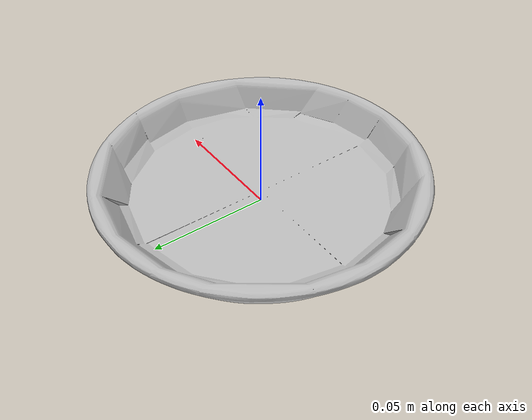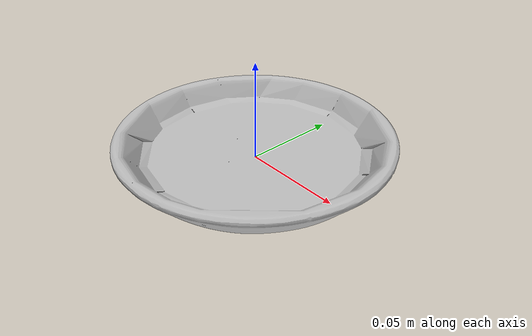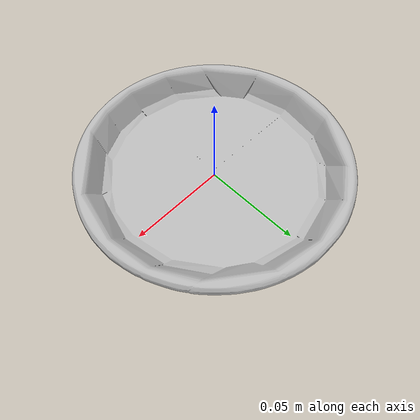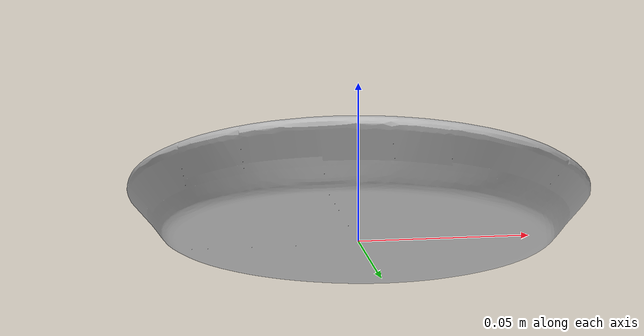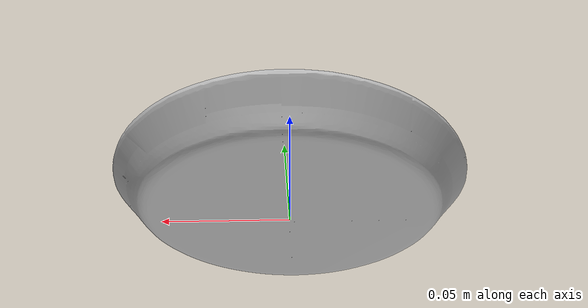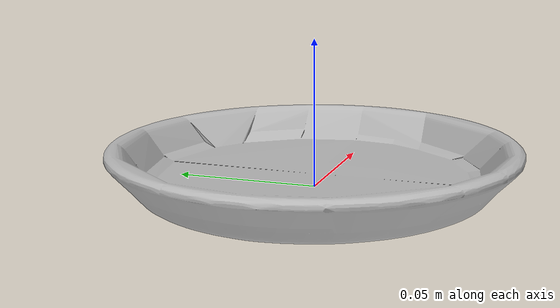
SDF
<?xml version='1.0' encoding='utf-8'?>
<sdf version="1.7">
  <model name="bread_plate_2">
    <link name="base_link">
      <inertial>
        <mass>0.400000</mass>
        <pose>0.000280 -0.000131 0.005774 0 0 0</pose>
        <inertia>
          <ixx>7.645096e-04</ixx>
          <iyy>7.726847e-04</iyy>
          <izz>1.515521e-03</izz>
          <ixy>-1.144389e-06</ixy>
          <ixz>-1.388562e-06</ixz>
          <iyz>6.249604e-07</iyz>
        </inertia>
      </inertial>
      <visual name="visual">
        <geometry>
          <mesh>
            <uri>bread_plate_2_visual.obj</uri>
            <scale>0.8 0.8 0.8</scale>
          </mesh>
        </geometry>
      </visual>
      <collision name="collision_0">
        <surface>
          <friction>
            <ode>
              <mu>0.500</mu>
              <mu2>0.500</mu2>
            </ode>
          </friction>
        </surface>
        <geometry>
          <mesh>
            <uri>bread_plate_2_collision_0.obj</uri>
            <scale>0.8 0.8 0.8</scale>
          </mesh>
        </geometry>
      </collision>
      <collision name="collision_1">
        <surface>
          <friction>
            <ode>
              <mu>0.500</mu>
              <mu2>0.500</mu2>
            </ode>
          </friction>
        </surface>
        <geometry>
          <mesh>
            <uri>bread_plate_2_collision_1.obj</uri>
            <scale>0.8 0.8 0.8</scale>
          </mesh>
        </geometry>
      </collision>
      <collision name="collision_2">
        <surface>
          <friction>
            <ode>
              <mu>0.500</mu>
              <mu2>0.500</mu2>
            </ode>
          </friction>
        </surface>
        <geometry>
          <mesh>
            <uri>bread_plate_2_collision_10.obj</uri>
            <scale>0.8 0.8 0.8</scale>
          </mesh>
        </geometry>
      </collision>
      <collision name="collision_3">
        <surface>
          <friction>
            <ode>
              <mu>0.500</mu>
              <mu2>0.500</mu2>
            </ode>
          </friction>
        </surface>
        <geometry>
          <mesh>
            <uri>bread_plate_2_collision_11.obj</uri>
            <scale>0.8 0.8 0.8</scale>
          </mesh>
        </geometry>
      </collision>
      <collision name="collision_4">
        <surface>
          <friction>
            <ode>
              <mu>0.500</mu>
              <mu2>0.500</mu2>
            </ode>
          </friction>
        </surface>
        <geometry>
          <mesh>
            <uri>bread_plate_2_collision_12.obj</uri>
            <scale>0.8 0.8 0.8</scale>
          </mesh>
        </geometry>
      </collision>
      <collision name="collision_5">
        <surface>
          <friction>
            <ode>
              <mu>0.500</mu>
              <mu2>0.500</mu2>
            </ode>
          </friction>
        </surface>
        <geometry>
          <mesh>
            <uri>bread_plate_2_collision_13.obj</uri>
            <scale>0.8 0.8 0.8</scale>
          </mesh>
        </geometry>
      </collision>
      <collision name="collision_6">
        <surface>
          <friction>
            <ode>
              <mu>0.500</mu>
              <mu2>0.500</mu2>
            </ode>
          </friction>
        </surface>
        <geometry>
          <mesh>
            <uri>bread_plate_2_collision_14.obj</uri>
            <scale>0.8 0.8 0.8</scale>
          </mesh>
        </geometry>
      </collision>
      <collision name="collision_7">
        <surface>
          <friction>
            <ode>
              <mu>0.500</mu>
              <mu2>0.500</mu2>
            </ode>
          </friction>
        </surface>
        <geometry>
          <mesh>
            <uri>bread_plate_2_collision_15.obj</uri>
            <scale>0.8 0.8 0.8</scale>
          </mesh>
        </geometry>
      </collision>
      <collision name="collision_8">
        <surface>
          <friction>
            <ode>
              <mu>0.500</mu>
              <mu2>0.500</mu2>
            </ode>
          </friction>
        </surface>
        <geometry>
          <mesh>
            <uri>bread_plate_2_collision_16.obj</uri>
            <scale>0.8 0.8 0.8</scale>
          </mesh>
        </geometry>
      </collision>
      <collision name="collision_9">
        <surface>
          <friction>
            <ode>
              <mu>0.500</mu>
              <mu2>0.500</mu2>
            </ode>
          </friction>
        </surface>
        <geometry>
          <mesh>
            <uri>bread_plate_2_collision_17.obj</uri>
            <scale>0.8 0.8 0.8</scale>
          </mesh>
        </geometry>
      </collision>
      <collision name="collision_10">
        <surface>
          <friction>
            <ode>
              <mu>0.500</mu>
              <mu2>0.500</mu2>
            </ode>
          </friction>
        </surface>
        <geometry>
          <mesh>
            <uri>bread_plate_2_collision_18.obj</uri>
            <scale>0.8 0.8 0.8</scale>
          </mesh>
        </geometry>
      </collision>
      <collision name="collision_11">
        <surface>
          <friction>
            <ode>
              <mu>0.500</mu>
              <mu2>0.500</mu2>
            </ode>
          </friction>
        </surface>
        <geometry>
          <mesh>
            <uri>bread_plate_2_collision_19.obj</uri>
            <scale>0.8 0.8 0.8</scale>
          </mesh>
        </geometry>
      </collision>
      <collision name="collision_12">
        <surface>
          <friction>
            <ode>
              <mu>0.500</mu>
              <mu2>0.500</mu2>
            </ode>
          </friction>
        </surface>
        <geometry>
          <mesh>
            <uri>bread_plate_2_collision_2.obj</uri>
            <scale>0.8 0.8 0.8</scale>
          </mesh>
        </geometry>
      </collision>
      <collision name="collision_13">
        <surface>
          <friction>
            <ode>
              <mu>0.500</mu>
              <mu2>0.500</mu2>
            </ode>
          </friction>
        </surface>
        <geometry>
          <mesh>
            <uri>bread_plate_2_collision_20.obj</uri>
            <scale>0.8 0.8 0.8</scale>
          </mesh>
        </geometry>
      </collision>
      <collision name="collision_14">
        <surface>
          <friction>
            <ode>
              <mu>0.500</mu>
              <mu2>0.500</mu2>
            </ode>
          </friction>
        </surface>
        <geometry>
          <mesh>
            <uri>bread_plate_2_collision_21.obj</uri>
            <scale>0.8 0.8 0.8</scale>
          </mesh>
        </geometry>
      </collision>
      <collision name="collision_15">
        <surface>
          <friction>
            <ode>
              <mu>0.500</mu>
              <mu2>0.500</mu2>
            </ode>
          </friction>
        </surface>
        <geometry>
          <mesh>
            <uri>bread_plate_2_collision_22.obj</uri>
            <scale>0.8 0.8 0.8</scale>
          </mesh>
        </geometry>
      </collision>
      <collision name="collision_16">
        <surface>
          <friction>
            <ode>
              <mu>0.500</mu>
              <mu2>0.500</mu2>
            </ode>
          </friction>
        </surface>
        <geometry>
          <mesh>
            <uri>bread_plate_2_collision_23.obj</uri>
            <scale>0.8 0.8 0.8</scale>
          </mesh>
        </geometry>
      </collision>
      <collision name="collision_17">
        <surface>
          <friction>
            <ode>
              <mu>0.500</mu>
              <mu2>0.500</mu2>
            </ode>
          </friction>
        </surface>
        <geometry>
          <mesh>
            <uri>bread_plate_2_collision_24.obj</uri>
            <scale>0.8 0.8 0.8</scale>
          </mesh>
        </geometry>
      </collision>
      <collision name="collision_18">
        <surface>
          <friction>
            <ode>
              <mu>0.500</mu>
              <mu2>0.500</mu2>
            </ode>
          </friction>
        </surface>
        <geometry>
          <mesh>
            <uri>bread_plate_2_collision_25.obj</uri>
            <scale>0.8 0.8 0.8</scale>
          </mesh>
        </geometry>
      </collision>
      <collision name="collision_19">
        <surface>
          <friction>
            <ode>
              <mu>0.500</mu>
              <mu2>0.500</mu2>
            </ode>
          </friction>
        </surface>
        <geometry>
          <mesh>
            <uri>bread_plate_2_collision_26.obj</uri>
            <scale>0.8 0.8 0.8</scale>
          </mesh>
        </geometry>
      </collision>
      <collision name="collision_20">
        <surface>
          <friction>
            <ode>
              <mu>0.500</mu>
              <mu2>0.500</mu2>
            </ode>
          </friction>
        </surface>
        <geometry>
          <mesh>
            <uri>bread_plate_2_collision_27.obj</uri>
            <scale>0.8 0.8 0.8</scale>
          </mesh>
        </geometry>
      </collision>
      <collision name="collision_21">
        <surface>
          <friction>
            <ode>
              <mu>0.500</mu>
              <mu2>0.500</mu2>
            </ode>
          </friction>
        </surface>
        <geometry>
          <mesh>
            <uri>bread_plate_2_collision_28.obj</uri>
            <scale>0.8 0.8 0.8</scale>
          </mesh>
        </geometry>
      </collision>
      <collision name="collision_22">
        <surface>
          <friction>
            <ode>
              <mu>0.500</mu>
              <mu2>0.500</mu2>
            </ode>
          </friction>
        </surface>
        <geometry>
          <mesh>
            <uri>bread_plate_2_collision_29.obj</uri>
            <scale>0.8 0.8 0.8</scale>
          </mesh>
        </geometry>
      </collision>
      <collision name="collision_23">
        <surface>
          <friction>
            <ode>
              <mu>0.500</mu>
              <mu2>0.500</mu2>
            </ode>
          </friction>
        </surface>
        <geometry>
          <mesh>
            <uri>bread_plate_2_collision_3.obj</uri>
            <scale>0.8 0.8 0.8</scale>
          </mesh>
        </geometry>
      </collision>
      <collision name="collision_24">
        <surface>
          <friction>
            <ode>
              <mu>0.500</mu>
              <mu2>0.500</mu2>
            </ode>
          </friction>
        </surface>
        <geometry>
          <mesh>
            <uri>bread_plate_2_collision_30.obj</uri>
            <scale>0.8 0.8 0.8</scale>
          </mesh>
        </geometry>
      </collision>
      <collision name="collision_25">
        <surface>
          <friction>
            <ode>
              <mu>0.500</mu>
              <mu2>0.500</mu2>
            </ode>
          </friction>
        </surface>
        <geometry>
          <mesh>
            <uri>bread_plate_2_collision_31.obj</uri>
            <scale>0.8 0.8 0.8</scale>
          </mesh>
        </geometry>
      </collision>
      <collision name="collision_26">
        <surface>
          <friction>
            <ode>
              <mu>0.500</mu>
              <mu2>0.500</mu2>
            </ode>
          </friction>
        </surface>
        <geometry>
          <mesh>
            <uri>bread_plate_2_collision_32.obj</uri>
            <scale>0.8 0.8 0.8</scale>
          </mesh>
        </geometry>
      </collision>
      <collision name="collision_27">
        <surface>
          <friction>
            <ode>
              <mu>0.500</mu>
              <mu2>0.500</mu2>
            </ode>
          </friction>
        </surface>
        <geometry>
          <mesh>
            <uri>bread_plate_2_collision_33.obj</uri>
            <scale>0.8 0.8 0.8</scale>
          </mesh>
        </geometry>
      </collision>
      <collision name="collision_28">
        <surface>
          <friction>
            <ode>
              <mu>0.500</mu>
              <mu2>0.500</mu2>
            </ode>
          </friction>
        </surface>
        <geometry>
          <mesh>
            <uri>bread_plate_2_collision_34.obj</uri>
            <scale>0.8 0.8 0.8</scale>
          </mesh>
        </geometry>
      </collision>
      <collision name="collision_29">
        <surface>
          <friction>
            <ode>
              <mu>0.500</mu>
              <mu2>0.500</mu2>
            </ode>
          </friction>
        </surface>
        <geometry>
          <mesh>
            <uri>bread_plate_2_collision_4.obj</uri>
            <scale>0.8 0.8 0.8</scale>
          </mesh>
        </geometry>
      </collision>
      <collision name="collision_30">
        <surface>
          <friction>
            <ode>
              <mu>0.500</mu>
              <mu2>0.500</mu2>
            </ode>
          </friction>
        </surface>
        <geometry>
          <mesh>
            <uri>bread_plate_2_collision_5.obj</uri>
            <scale>0.8 0.8 0.8</scale>
          </mesh>
        </geometry>
      </collision>
      <collision name="collision_31">
        <surface>
          <friction>
            <ode>
              <mu>0.500</mu>
              <mu2>0.500</mu2>
            </ode>
          </friction>
        </surface>
        <geometry>
          <mesh>
            <uri>bread_plate_2_collision_6.obj</uri>
            <scale>0.8 0.8 0.8</scale>
          </mesh>
        </geometry>
      </collision>
      <collision name="collision_32">
        <surface>
          <friction>
            <ode>
              <mu>0.500</mu>
              <mu2>0.500</mu2>
            </ode>
          </friction>
        </surface>
        <geometry>
          <mesh>
            <uri>bread_plate_2_collision_7.obj</uri>
            <scale>0.8 0.8 0.8</scale>
          </mesh>
        </geometry>
      </collision>
      <collision name="collision_33">
        <surface>
          <friction>
            <ode>
              <mu>0.500</mu>
              <mu2>0.500</mu2>
            </ode>
          </friction>
        </surface>
        <geometry>
          <mesh>
            <uri>bread_plate_2_collision_8.obj</uri>
            <scale>0.8 0.8 0.8</scale>
          </mesh>
        </geometry>
      </collision>
      <collision name="collision_34">
        <surface>
          <friction>
            <ode>
              <mu>0.500</mu>
              <mu2>0.500</mu2>
            </ode>
          </friction>
        </surface>
        <geometry>
          <mesh>
            <uri>bread_plate_2_collision_9.obj</uri>
            <scale>0.8 0.8 0.8</scale>
          </mesh>
        </geometry>
      </collision>
    </link>
  </model>
</sdf>
